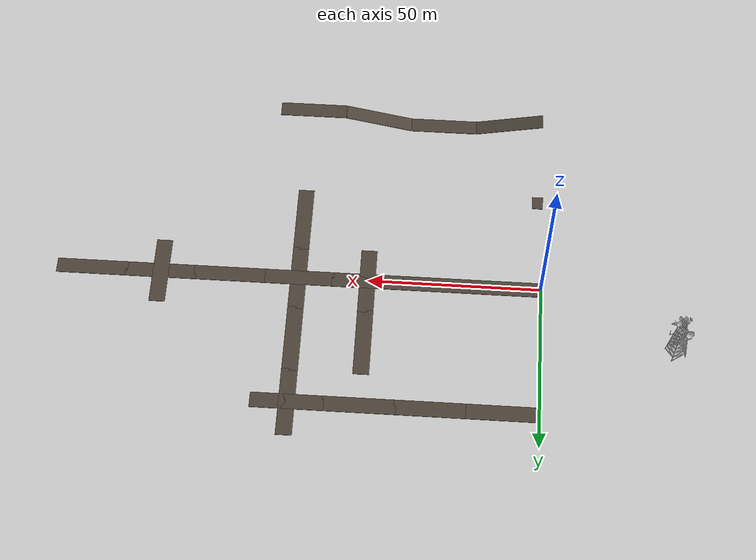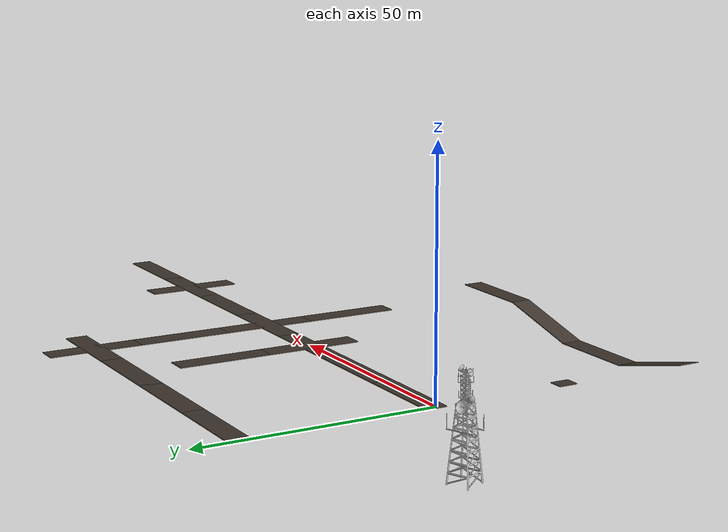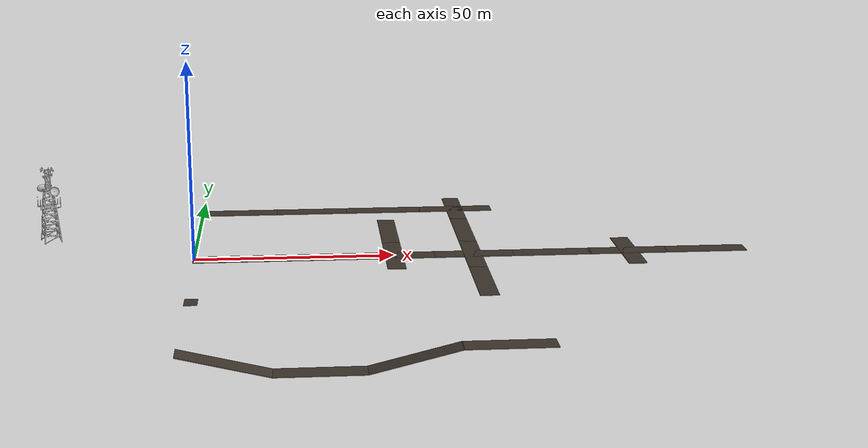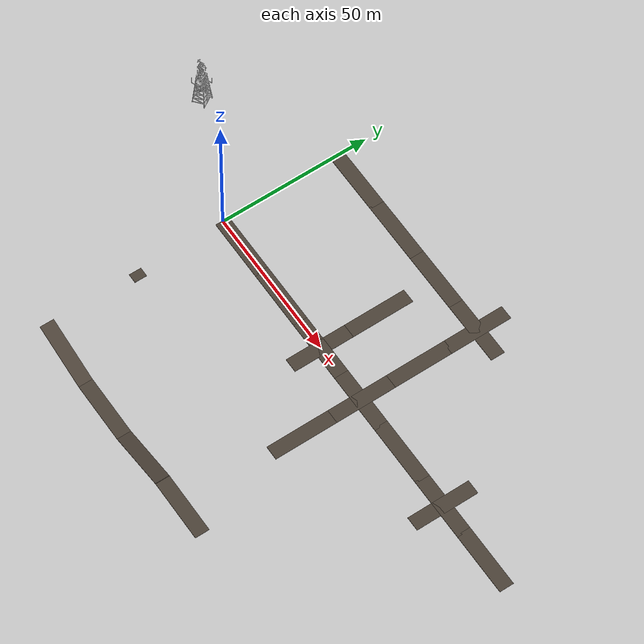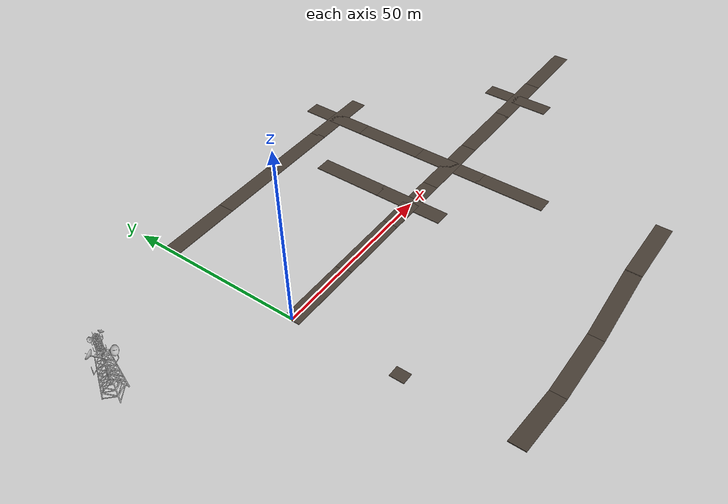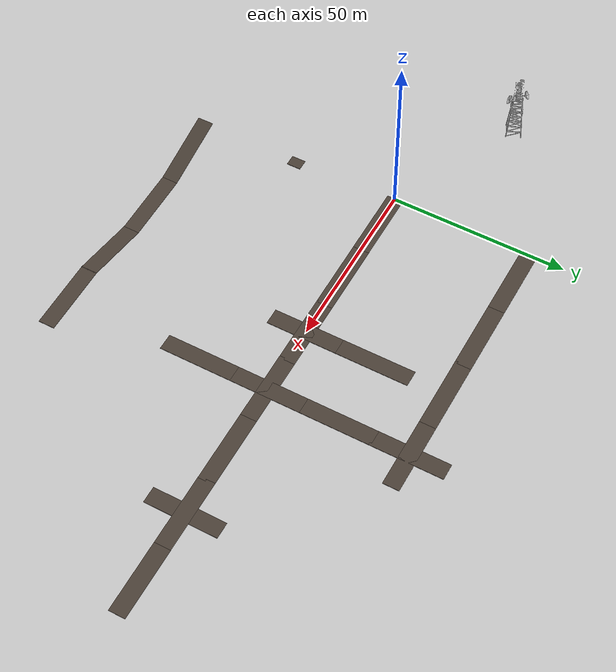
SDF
<sdf version="1.9">
 <world name="living_map">
  <model name="galleries_floor">
   <static>true</static>
   <link name="f0">
    <pose>10.0 0.0 -0.1 0 0 0</pose>
    <collision name="c"><geometry><box><size>20.6 4.6 0.2</size></box></geometry></collision>
    <visual name="v">
     <geometry><box><size>20.6 4.6 0.2</size></box></geometry>
     <material>
      <ambient>0.30 0.26 0.22 1</ambient>
      <diffuse>0.30 0.26 0.22 1</diffuse>
      <specular>0.05 0.05 0.05 1</specular>
      <pbr>
       <metal>
        <albedo_map>model://lm_rock/materials/textures/rock.png</albedo_map>
        <roughness>0.95</roughness>
        <metalness>0.0</metalness>
       </metal>
      </pbr>
     </material>
    </visual>
   </link>
   <link name="f1">
    <pose>30.0 0.0 -0.1 0 0 0</pose>
    <collision name="c"><geometry><box><size>20.6 4.6 0.2</size></box></geometry></collision>
    <visual name="v">
     <geometry><box><size>20.6 4.6 0.2</size></box></geometry>
     <material>
      <ambient>0.30 0.26 0.22 1</ambient>
      <diffuse>0.30 0.26 0.22 1</diffuse>
      <specular>0.05 0.05 0.05 1</specular>
      <pbr>
       <metal>
        <albedo_map>model://lm_rock/materials/textures/rock.png</albedo_map>
        <roughness>0.95</roughness>
        <metalness>0.0</metalness>
       </metal>
      </pbr>
     </material>
    </visual>
   </link>
   <link name="f2">
    <pose>50.0 0.0 -0.1 0 0 0</pose>
    <collision name="c"><geometry><box><size>20.6 4.6 0.2</size></box></geometry></collision>
    <visual name="v">
     <geometry><box><size>20.6 4.6 0.2</size></box></geometry>
     <material>
      <ambient>0.30 0.26 0.22 1</ambient>
      <diffuse>0.30 0.26 0.22 1</diffuse>
      <specular>0.05 0.05 0.05 1</specular>
      <pbr>
       <metal>
        <albedo_map>model://lm_rock/materials/textures/rock.png</albedo_map>
        <roughness>0.95</roughness>
        <metalness>0.0</metalness>
       </metal>
      </pbr>
     </material>
    </visual>
   </link>
   <link name="f3">
    <pose>50.0 0.0 -0.1 0 0 0</pose>
    <collision name="c"><geometry><box><size>4.6 20.6 0.2</size></box></geometry></collision>
    <visual name="v">
     <geometry><box><size>4.6 20.6 0.2</size></box></geometry>
     <material>
      <ambient>0.30 0.26 0.22 1</ambient>
      <diffuse>0.30 0.26 0.22 1</diffuse>
      <specular>0.05 0.05 0.05 1</specular>
      <pbr>
       <metal>
        <albedo_map>model://lm_rock/materials/textures/rock.png</albedo_map>
        <roughness>0.95</roughness>
        <metalness>0.0</metalness>
       </metal>
      </pbr>
     </material>
    </visual>
   </link>
   <link name="f4">
    <pose>50.0 20.0 -0.1 0 0 0</pose>
    <collision name="c"><geometry><box><size>4.6 20.6 0.2</size></box></geometry></collision>
    <visual name="v">
     <geometry><box><size>4.6 20.6 0.2</size></box></geometry>
     <material>
      <ambient>0.30 0.26 0.22 1</ambient>
      <diffuse>0.30 0.26 0.22 1</diffuse>
      <specular>0.05 0.05 0.05 1</specular>
      <pbr>
       <metal>
        <albedo_map>model://lm_rock/materials/textures/rock.png</albedo_map>
        <roughness>0.95</roughness>
        <metalness>0.0</metalness>
       </metal>
      </pbr>
     </material>
    </visual>
   </link>
   <link name="f5">
    <pose>70.0 0.0 -0.1 0 0 0</pose>
    <collision name="c"><geometry><box><size>20.6 4.6 0.2</size></box></geometry></collision>
    <visual name="v">
     <geometry><box><size>20.6 4.6 0.2</size></box></geometry>
     <material>
      <ambient>0.30 0.26 0.22 1</ambient>
      <diffuse>0.30 0.26 0.22 1</diffuse>
      <specular>0.05 0.05 0.05 1</specular>
      <pbr>
       <metal>
        <albedo_map>model://lm_rock/materials/textures/rock.png</albedo_map>
        <roughness>0.95</roughness>
        <metalness>0.0</metalness>
       </metal>
      </pbr>
     </material>
    </visual>
   </link>
   <link name="f6">
    <pose>70.0 0.0 -0.1 0 0 0</pose>
    <collision name="c"><geometry><box><size>4.6 20.6 0.2</size></box></geometry></collision>
    <visual name="v">
     <geometry><box><size>4.6 20.6 0.2</size></box></geometry>
     <material>
      <ambient>0.30 0.26 0.22 1</ambient>
      <diffuse>0.30 0.26 0.22 1</diffuse>
      <specular>0.05 0.05 0.05 1</specular>
      <pbr>
       <metal>
        <albedo_map>model://lm_rock/materials/textures/rock.png</albedo_map>
        <roughness>0.95</roughness>
        <metalness>0.0</metalness>
       </metal>
      </pbr>
     </material>
    </visual>
   </link>
   <link name="f7">
    <pose>70.0 -20.0 -0.1 0 0 0</pose>
    <collision name="c"><geometry><box><size>4.6 20.6 0.2</size></box></geometry></collision>
    <visual name="v">
     <geometry><box><size>4.6 20.6 0.2</size></box></geometry>
     <material>
      <ambient>0.30 0.26 0.22 1</ambient>
      <diffuse>0.30 0.26 0.22 1</diffuse>
      <specular>0.05 0.05 0.05 1</specular>
      <pbr>
       <metal>
        <albedo_map>model://lm_rock/materials/textures/rock.png</albedo_map>
        <roughness>0.95</roughness>
        <metalness>0.0</metalness>
       </metal>
      </pbr>
     </material>
    </visual>
   </link>
   <link name="f8">
    <pose>70.0 20.0 -0.1 0 0 0</pose>
    <collision name="c"><geometry><box><size>4.6 20.6 0.2</size></box></geometry></collision>
    <visual name="v">
     <geometry><box><size>4.6 20.6 0.2</size></box></geometry>
     <material>
      <ambient>0.30 0.26 0.22 1</ambient>
      <diffuse>0.30 0.26 0.22 1</diffuse>
      <specular>0.05 0.05 0.05 1</specular>
      <pbr>
       <metal>
        <albedo_map>model://lm_rock/materials/textures/rock.png</albedo_map>
        <roughness>0.95</roughness>
        <metalness>0.0</metalness>
       </metal>
      </pbr>
     </material>
    </visual>
   </link>
   <link name="f9">
    <pose>90.0 0.0 -0.1 0 0 0</pose>
    <collision name="c"><geometry><box><size>20.6 4.6 0.2</size></box></geometry></collision>
    <visual name="v">
     <geometry><box><size>20.6 4.6 0.2</size></box></geometry>
     <material>
      <ambient>0.30 0.26 0.22 1</ambient>
      <diffuse>0.30 0.26 0.22 1</diffuse>
      <specular>0.05 0.05 0.05 1</specular>
      <pbr>
       <metal>
        <albedo_map>model://lm_rock/materials/textures/rock.png</albedo_map>
        <roughness>0.95</roughness>
        <metalness>0.0</metalness>
       </metal>
      </pbr>
     </material>
    </visual>
   </link>
   <link name="f10">
    <pose>110.0 0.0 -0.1 0 0 0</pose>
    <collision name="c"><geometry><box><size>20.6 4.6 0.2</size></box></geometry></collision>
    <visual name="v">
     <geometry><box><size>20.6 4.6 0.2</size></box></geometry>
     <material>
      <ambient>0.30 0.26 0.22 1</ambient>
      <diffuse>0.30 0.26 0.22 1</diffuse>
      <specular>0.05 0.05 0.05 1</specular>
      <pbr>
       <metal>
        <albedo_map>model://lm_rock/materials/textures/rock.png</albedo_map>
        <roughness>0.95</roughness>
        <metalness>0.0</metalness>
       </metal>
      </pbr>
     </material>
    </visual>
   </link>
   <link name="f11">
    <pose>110.0 0.0 -0.1 0 0 0</pose>
    <collision name="c"><geometry><box><size>4.6 20.6 0.2</size></box></geometry></collision>
    <visual name="v">
     <geometry><box><size>4.6 20.6 0.2</size></box></geometry>
     <material>
      <ambient>0.30 0.26 0.22 1</ambient>
      <diffuse>0.30 0.26 0.22 1</diffuse>
      <specular>0.05 0.05 0.05 1</specular>
      <pbr>
       <metal>
        <albedo_map>model://lm_rock/materials/textures/rock.png</albedo_map>
        <roughness>0.95</roughness>
        <metalness>0.0</metalness>
       </metal>
      </pbr>
     </material>
    </visual>
   </link>
   <link name="f12">
    <pose>130.0 0.0 -0.1 0 0 0</pose>
    <collision name="c"><geometry><box><size>20.6 4.6 0.2</size></box></geometry></collision>
    <visual name="v">
     <geometry><box><size>20.6 4.6 0.2</size></box></geometry>
     <material>
      <ambient>0.30 0.26 0.22 1</ambient>
      <diffuse>0.30 0.26 0.22 1</diffuse>
      <specular>0.05 0.05 0.05 1</specular>
      <pbr>
       <metal>
        <albedo_map>model://lm_rock/materials/textures/rock.png</albedo_map>
        <roughness>0.95</roughness>
        <metalness>0.0</metalness>
       </metal>
      </pbr>
     </material>
    </visual>
   </link>
   <link name="f13">
    <pose>10.0 40.0 -0.1 0 0 0</pose>
    <collision name="c"><geometry><box><size>20.6 4.6 0.2</size></box></geometry></collision>
    <visual name="v">
     <geometry><box><size>20.6 4.6 0.2</size></box></geometry>
     <material>
      <ambient>0.30 0.26 0.22 1</ambient>
      <diffuse>0.30 0.26 0.22 1</diffuse>
      <specular>0.05 0.05 0.05 1</specular>
      <pbr>
       <metal>
        <albedo_map>model://lm_rock/materials/textures/rock.png</albedo_map>
        <roughness>0.95</roughness>
        <metalness>0.0</metalness>
       </metal>
      </pbr>
     </material>
    </visual>
   </link>
   <link name="f14">
    <pose>30.0 40.0 -0.1 0 0 0</pose>
    <collision name="c"><geometry><box><size>20.6 4.6 0.2</size></box></geometry></collision>
    <visual name="v">
     <geometry><box><size>20.6 4.6 0.2</size></box></geometry>
     <material>
      <ambient>0.30 0.26 0.22 1</ambient>
      <diffuse>0.30 0.26 0.22 1</diffuse>
      <specular>0.05 0.05 0.05 1</specular>
      <pbr>
       <metal>
        <albedo_map>model://lm_rock/materials/textures/rock.png</albedo_map>
        <roughness>0.95</roughness>
        <metalness>0.0</metalness>
       </metal>
      </pbr>
     </material>
    </visual>
   </link>
   <link name="f15">
    <pose>50.0 40.0 -0.1 0 0 0</pose>
    <collision name="c"><geometry><box><size>20.6 4.6 0.2</size></box></geometry></collision>
    <visual name="v">
     <geometry><box><size>20.6 4.6 0.2</size></box></geometry>
     <material>
      <ambient>0.30 0.26 0.22 1</ambient>
      <diffuse>0.30 0.26 0.22 1</diffuse>
      <specular>0.05 0.05 0.05 1</specular>
      <pbr>
       <metal>
        <albedo_map>model://lm_rock/materials/textures/rock.png</albedo_map>
        <roughness>0.95</roughness>
        <metalness>0.0</metalness>
       </metal>
      </pbr>
     </material>
    </visual>
   </link>
   <link name="f16">
    <pose>70.0 40.0 -0.1 0 0 0</pose>
    <collision name="c"><geometry><box><size>20.6 4.6 0.2</size></box></geometry></collision>
    <visual name="v">
     <geometry><box><size>20.6 4.6 0.2</size></box></geometry>
     <material>
      <ambient>0.30 0.26 0.22 1</ambient>
      <diffuse>0.30 0.26 0.22 1</diffuse>
      <specular>0.05 0.05 0.05 1</specular>
      <pbr>
       <metal>
        <albedo_map>model://lm_rock/materials/textures/rock.png</albedo_map>
        <roughness>0.95</roughness>
        <metalness>0.0</metalness>
       </metal>
      </pbr>
     </material>
    </visual>
   </link>
   <link name="f17">
    <pose>70.0 40.0 -0.1 0 0 0</pose>
    <collision name="c"><geometry><box><size>4.6 20.6 0.2</size></box></geometry></collision>
    <visual name="v">
     <geometry><box><size>4.6 20.6 0.2</size></box></geometry>
     <material>
      <ambient>0.30 0.26 0.22 1</ambient>
      <diffuse>0.30 0.26 0.22 1</diffuse>
      <specular>0.05 0.05 0.05 1</specular>
      <pbr>
       <metal>
        <albedo_map>model://lm_rock/materials/textures/rock.png</albedo_map>
        <roughness>0.95</roughness>
        <metalness>0.0</metalness>
       </metal>
      </pbr>
     </material>
    </visual>
   </link>
   <link name="f22">
    <pose>1.25 -30.0 -0.1 0 0 0</pose>
    <collision name="c"><geometry><box><size>3.1 3.9999999999999987 0.2</size></box></geometry></collision>
    <visual name="v">
     <geometry><box><size>3.1 3.9999999999999987 0.2</size></box></geometry>
     <material>
      <ambient>0.30 0.26 0.22 1</ambient>
      <diffuse>0.30 0.26 0.22 1</diffuse>
      <specular>0.05 0.05 0.05 1</specular>
      <pbr>
       <metal>
        <albedo_map>model://lm_rock/materials/textures/rock.png</albedo_map>
        <roughness>0.95</roughness>
        <metalness>0.0</metalness>
       </metal>
      </pbr>
     </material>
    </visual>
   </link>
   <link name="c0">
    <pose>10 -60 -2.6 0 0.2450 0</pose>
    <collision name="c"><geometry><box><size>20.815528128088303 4.6 0.2</size></box></geometry></collision>
    <visual name="v">
     <geometry><box><size>20.815528128088303 4.6 0.2</size></box></geometry>
     <material>
      <ambient>0.30 0.26 0.22 1</ambient>
      <diffuse>0.30 0.26 0.22 1</diffuse>
      <specular>0.05 0.05 0.05 1</specular>
      <pbr>
       <metal>
        <albedo_map>model://lm_rock/materials/textures/rock.png</albedo_map>
        <roughness>0.95</roughness>
        <metalness>0.0</metalness>
       </metal>
      </pbr>
     </material>
    </visual>
   </link>
   <link name="c1">
    <pose>30 -60 -5.1 0 0.0000 0</pose>
    <collision name="c"><geometry><box><size>20.2 4.6 0.2</size></box></geometry></collision>
    <visual name="v">
     <geometry><box><size>20.2 4.6 0.2</size></box></geometry>
     <material>
      <ambient>0.30 0.26 0.22 1</ambient>
      <diffuse>0.30 0.26 0.22 1</diffuse>
      <specular>0.05 0.05 0.05 1</specular>
      <pbr>
       <metal>
        <albedo_map>model://lm_rock/materials/textures/rock.png</albedo_map>
        <roughness>0.95</roughness>
        <metalness>0.0</metalness>
       </metal>
      </pbr>
     </material>
    </visual>
   </link>
   <link name="c2">
    <pose>50 -60 -2.6 0 -0.2450 0</pose>
    <collision name="c"><geometry><box><size>20.815528128088303 4.6 0.2</size></box></geometry></collision>
    <visual name="v">
     <geometry><box><size>20.815528128088303 4.6 0.2</size></box></geometry>
     <material>
      <ambient>0.30 0.26 0.22 1</ambient>
      <diffuse>0.30 0.26 0.22 1</diffuse>
      <specular>0.05 0.05 0.05 1</specular>
      <pbr>
       <metal>
        <albedo_map>model://lm_rock/materials/textures/rock.png</albedo_map>
        <roughness>0.95</roughness>
        <metalness>0.0</metalness>
       </metal>
      </pbr>
     </material>
    </visual>
   </link>
   <link name="c3">
    <pose>70 -60 -0.1 0 0.0000 0</pose>
    <collision name="c"><geometry><box><size>20.2 4.6 0.2</size></box></geometry></collision>
    <visual name="v">
     <geometry><box><size>20.2 4.6 0.2</size></box></geometry>
     <material>
      <ambient>0.30 0.26 0.22 1</ambient>
      <diffuse>0.30 0.26 0.22 1</diffuse>
      <specular>0.05 0.05 0.05 1</specular>
      <pbr>
       <metal>
        <albedo_map>model://lm_rock/materials/textures/rock.png</albedo_map>
        <roughness>0.95</roughness>
        <metalness>0.0</metalness>
       </metal>
      </pbr>
     </material>
    </visual>
   </link>
  </model>
  <model name="lte_mast">
   <static>true</static>
   <pose>-38 18 0 0 0 0.4</pose>
   <link name="l">
    <visual name="v">
     <geometry>
      <mesh><uri>model://radio_tower/meshes/radio_tower.obj</uri><scale>0.45 0.45 0.45</scale></mesh>
     </geometry>
    </visual>
   </link>
  </model>
 </world>
</sdf>
